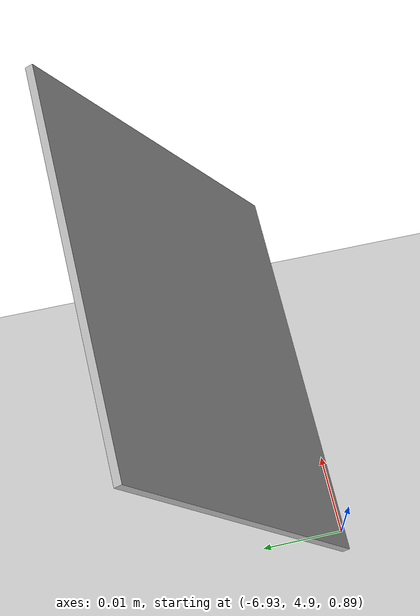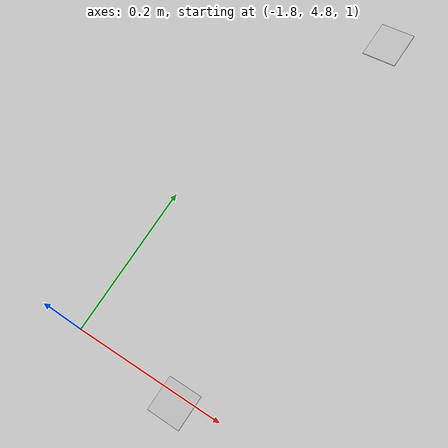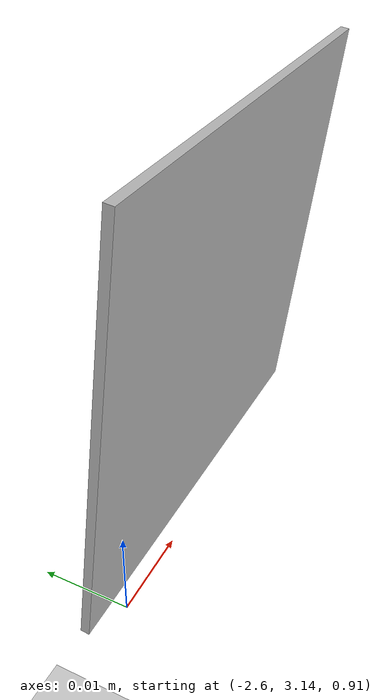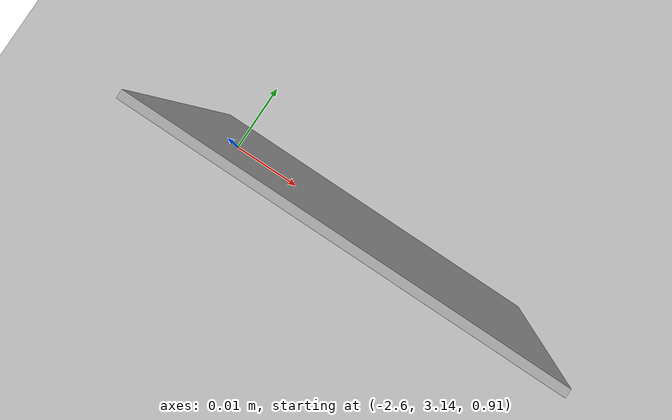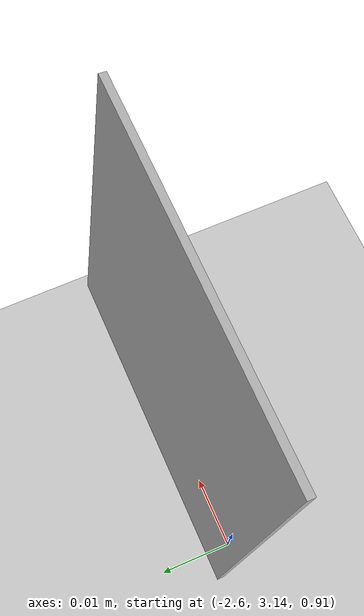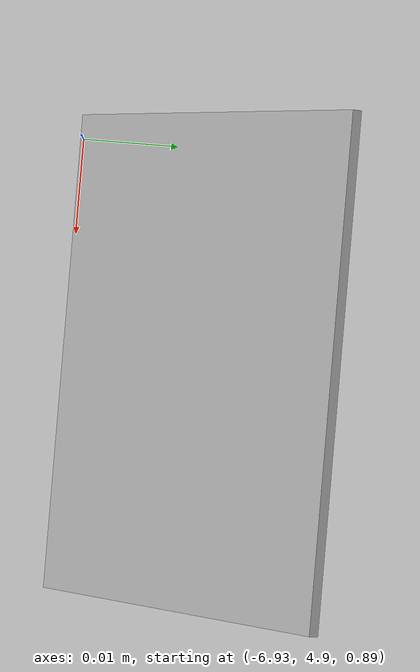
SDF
<sdf version="1.6">
 <world name="robo_lab">
  <light name="sun" type="directional">
   <direction>0.5 0.1 -0.9</direction>
   <pose>0 0 10 0 -0 0</pose>
   <specular>0.2 0.2 0.2 1</specular>
   <diffuse>0.8 0.8 0.8 1</diffuse>
   <attenuation>
    <range>1000</range>
    <quadratic>0.001</quadratic>
    <constant>0.9</constant>
    <linear>0.01</linear>
   </attenuation>
  </light>
  <model name="ground_plane">
   <static>1</static>
   <link name="link">
    <collision name="collision">
     <geometry><plane><normal>0 0 1</normal><size>100 100</size></plane></geometry>
     <surface>
      <contact><collide_bitmask>65535</collide_bitmask></contact>
      <friction><ode><mu>100</mu><mu2>50</mu2></ode></friction>
     </surface>
    </collision>
    <visual name="visual">
     <cast_shadows>0</cast_shadows>
     <geometry><plane><normal>0 0 1</normal><size>100 100</size></plane></geometry>
     <material>
      <script><uri>file://media/materials/scripts/gazebo.material</uri><name>Gazebo/Grey</name></script>
     </material>
    </visual>
   </link>
   <pose>-0.733735 -0.012378 0 0 -0 0</pose>
  </model>
  <gravity>0 0 -9.8</gravity>
  <magnetic_field>6e-06 2.3e-05 -4.2e-05</magnetic_field>
  <atmosphere type="adiabatic"/>
  <physics name="default_physics" default="0" type="ode">
   <max_step_size>0.001</max_step_size>
   <real_time_factor>1</real_time_factor>
   <real_time_update_rate>1000</real_time_update_rate>
  </physics>
  <scene><ambient>0.4 0.4 0.4 1</ambient><background>0.7 0.7 0.7 1</background><shadows>1</shadows></scene>
  <audio><device>default</device></audio>
  <spherical_coordinates>
   <surface_model>EARTH_WGS84</surface_model>
   <latitude_deg>0</latitude_deg>
   <longitude_deg>0</longitude_deg>
   <elevation>0</elevation>
   <heading_deg>0</heading_deg>
  </spherical_coordinates>
  <model name="hrw_k_eg"><static>1</static><pose>-3.46561 5.06752 0 0 -0 0</pose></model>
  <model name="alvar_marker_18">
   <static>1</static>
   <link name="marker">
    <inertial><mass>0.1</mass></inertial>
    <visual name="visual">
     <geometry><box><size>0.05 0.05 0.001</size></box></geometry>
     <material>
      <script>
       <uri>model://alvar_marker_18/material/scripts</uri>
       <uri>model://alvar_marker_18/material/textures</uri>
       <name>alvar_marker_18</name>
      </script>
     </material>
    </visual>
    <gravity>0</gravity>
   </link>
   <pose>-1.66605 4.78937 0.922501 0 -0.226175 0</pose>
  </model>
  <model name="alvar_marker_18_0">
   <static>1</static>
   <link name="marker">
    <inertial><mass>0.1</mass></inertial>
    <visual name="visual">
     <geometry><box><size>0.05 0.05 0.001</size></box></geometry>
     <material>
      <script>
       <uri>model://alvar_marker_18/material/scripts</uri>
       <uri>model://alvar_marker_18/material/textures</uri>
       <name>alvar_marker_18</name>
      </script>
     </material>
    </visual>
    <gravity>0</gravity>
   </link>
   <pose>-1.69095 5.33042 0.962553 0 -0.3597 0</pose>
  </model>
  <model name="alvar_marker_19">
   <static>1</static>
   <link name="marker">
    <inertial><mass>0.1</mass></inertial>
    <visual name="visual">
     <geometry><box><size>0.05 0.05 0.001</size></box></geometry>
     <material>
      <script>
       <uri>model://alvar_marker_19/material/scripts</uri>
       <uri>model://alvar_marker_19/material/textures</uri>
       <name>alvar_marker_19</name>
      </script>
     </material>
    </visual>
    <gravity>0</gravity>
   </link>
   <pose>-2.57882 3.13981 0.933593 1.69081 -0 0</pose>
  </model>
  <model name="alvar_marker_20">
   <static>1</static>
   <link name="marker">
    <inertial><mass>0.1</mass></inertial>
    <visual name="visual">
     <geometry><box><size>0.05 0.05 0.001</size></box></geometry>
     <material>
      <script>
       <uri>model://alvar_marker_20/material/scripts</uri>
       <uri>model://alvar_marker_20/material/textures</uri>
       <name>alvar_marker_20</name>
      </script>
     </material>
    </visual>
    <gravity>0</gravity>
   </link>
   <pose>-6.90756 4.91354 0.911436 1.00348 -0 0</pose>
  </model>
 </world>
</sdf>
